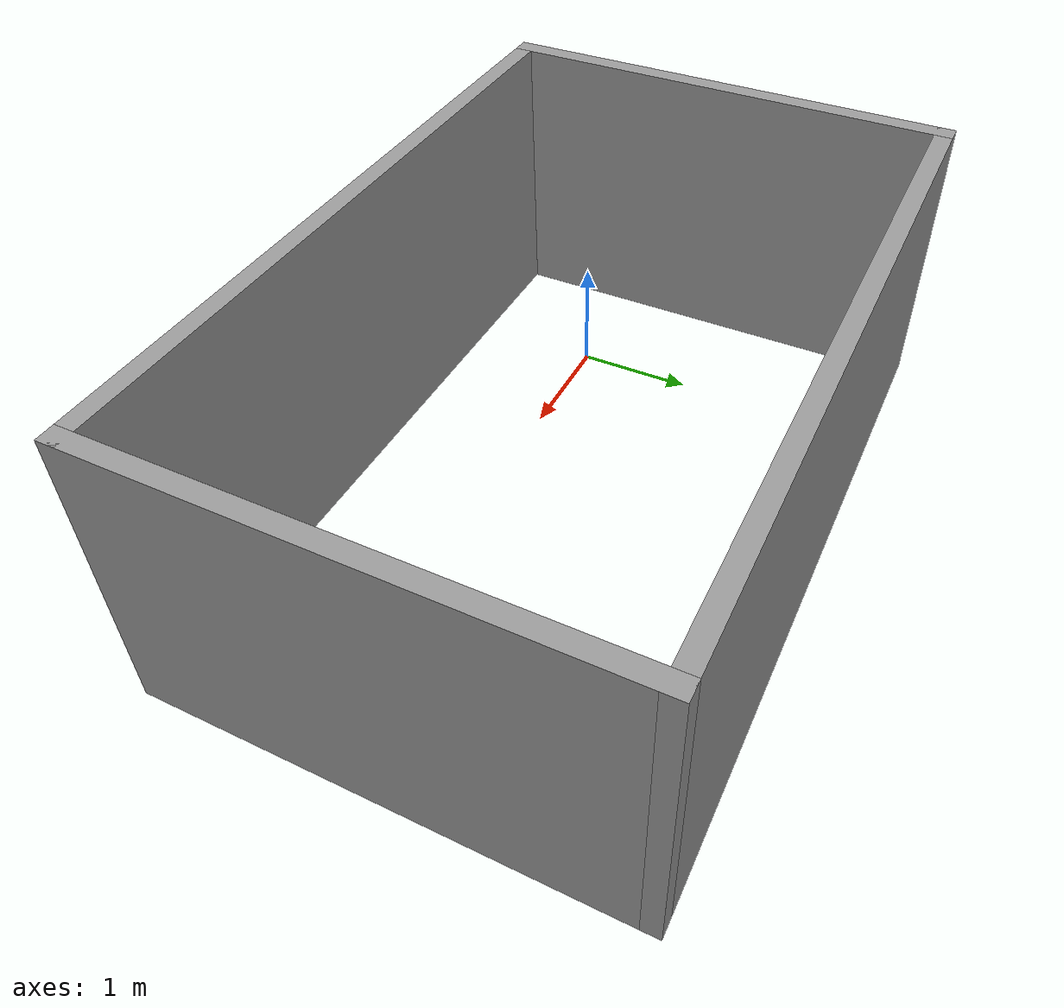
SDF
<?xml version='1.0'?>
<sdf version='1.7'>
  <model name='Wall'>
    <pose>1.825 0.775 0 0 -0 0</pose>
    <link name='Wall_20'>
      <collision name='Wall_20_Collision'>
        <geometry>
          <box>
            <size>4 0.15 2.5</size>
          </box>
        </geometry>
        <pose>0 0 1.25 0 -0 0</pose>
      </collision>
      <visual name='Wall_20_Visual'>
        <pose>0 0 1.25 0 -0 0</pose>
        <geometry>
          <box>
            <size>4 0.15 2.5</size>
          </box>
        </geometry>
        <material>
          <script>
            <uri>file://media/materials/scripts/gazebo.material</uri>
            <name>Gazebo/Grey</name>
          </script>
          <ambient>1 1 1 1</ambient>
        </material>
        <meta>
          <layer>0</layer>
        </meta>
      </visual>
      <pose>-2.925 0 0 0 -0 1.5708</pose>
    </link>
    <link name='Wall_22'>
      <collision name='Wall_22_Collision'>
        <geometry>
          <box>
            <size>6 0.15 2.5</size>
          </box>
        </geometry>
        <pose>0 0 1.25 0 -0 0</pose>
      </collision>
      <visual name='Wall_22_Visual'>
        <pose>0 0 1.25 0 -0 0</pose>
        <geometry>
          <box>
            <size>6 0.15 2.5</size>
          </box>
        </geometry>
        <material>
          <script>
            <uri>file://media/materials/scripts/gazebo.material</uri>
            <name>Gazebo/Grey</name>
          </script>
          <ambient>1 1 1 1</ambient>
        </material>
        <meta>
          <layer>0</layer>
        </meta>
      </visual>
      <pose>0 -1.925 0 0 -0 0</pose>
    </link>
    <link name='Wall_23'>
      <collision name='Wall_23_Collision'>
        <geometry>
          <box>
            <size>4 0.15 2.5</size>
          </box>
        </geometry>
        <pose>0 0 1.25 0 -0 0</pose>
      </collision>
      <visual name='Wall_23_Visual'>
        <pose>0 0 1.25 0 -0 0</pose>
        <geometry>
          <box>
            <size>4 0.15 2.5</size>
          </box>
        </geometry>
        <material>
          <script>
            <uri>file://media/materials/scripts/gazebo.material</uri>
            <name>Gazebo/Grey</name>
          </script>
          <ambient>1 1 1 1</ambient>
        </material>
        <meta>
          <layer>0</layer>
        </meta>
      </visual>
      <pose>2.925 0 0 0 -0 1.5708</pose>
    </link>
    <link name='Wall_24'>
      <collision name='Wall_24_Collision'>
        <geometry>
          <box>
            <size>6 0.15 2.5</size>
          </box>
        </geometry>
        <pose>0 0 1.25 0 -0 0</pose>
      </collision>
      <visual name='Wall_24_Visual'>
        <pose>0 0 1.25 0 -0 0</pose>
        <geometry>
          <box>
            <size>6 0.15 2.5</size>
          </box>
        </geometry>
        <material>
          <script>
            <uri>file://media/materials/scripts/gazebo.material</uri>
            <name>Gazebo/Grey</name>
          </script>
          <ambient>1 1 1 1</ambient>
        </material>
        <meta>
          <layer>0</layer>
        </meta>
      </visual>
      <pose>0 1.925 0 0 -0 3.14159</pose>
    </link>
    <static>1</static>
  </model>
</sdf>
